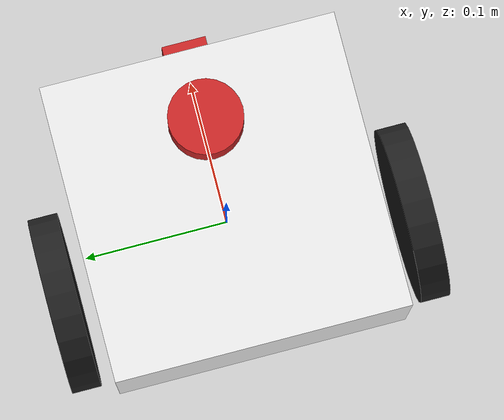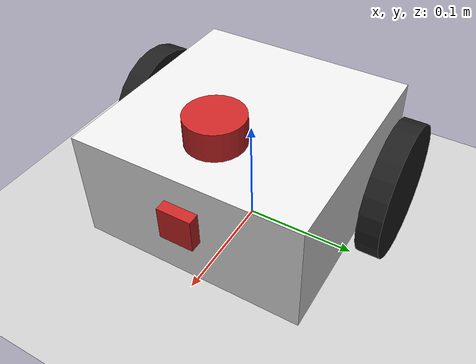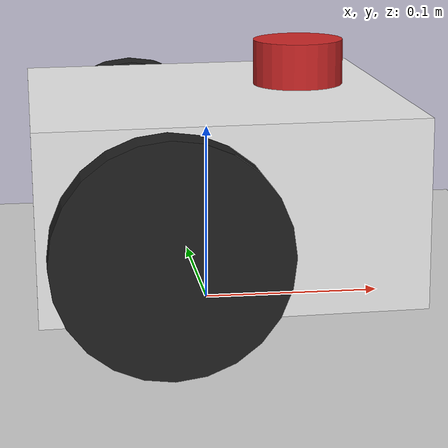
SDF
<sdf version="1.7">
 <world name="default">
  <light name="sun" type="directional">
   <pose>0 0 10 0 -0 0</pose>
   <diffuse>0.8 0.8 0.8 1</diffuse>
   <specular>0.2 0.2 0.2 1</specular>
   <attenuation>
    <range>1000</range>
    <constant>0.9</constant>
    <linear>0.01</linear>
    <quadratic>0.001</quadratic>
   </attenuation>
   <direction>-0.5 0.1 -0.9</direction>
   <spot><inner_angle>0</inner_angle><outer_angle>0</outer_angle><falloff>0</falloff></spot>
  </light>
  <model name="ground_plane">
   <static>1</static>
   <link name="link">
    <collision name="collision">
     <geometry><plane><normal>0 0 1</normal><size>100 100</size></plane></geometry>
     <surface>
      <contact><collide_bitmask>65535</collide_bitmask></contact>
      <friction><ode><mu>100</mu><mu2>50</mu2></ode></friction>
     </surface>
    </collision>
    <visual name="visual">
     <cast_shadows>0</cast_shadows>
     <geometry><plane><normal>0 0 1</normal><size>100 100</size></plane></geometry>
     <material>
      <script><uri>file://media/materials/scripts/gazebo.material</uri><name>Gazebo/Grey</name></script>
     </material>
    </visual>
   </link>
  </model>
  <gravity>0 0 -9.8</gravity>
  <magnetic_field>6e-06 2.3e-05 -4.2e-05</magnetic_field>
  <atmosphere type="adiabatic"/>
  <physics type="ode">
   <max_step_size>0.001</max_step_size>
   <real_time_factor>1</real_time_factor>
   <real_time_update_rate>1000</real_time_update_rate>
  </physics>
  <scene><ambient>0.4 0.4 0.4 1</ambient><background>0.7 0.7 0.7 1</background><shadows>1</shadows></scene>
  <audio><device>default</device></audio>
  <spherical_coordinates>
   <surface_model>EARTH_WGS84</surface_model>
   <latitude_deg>0</latitude_deg>
   <longitude_deg>0</longitude_deg>
   <elevation>0</elevation>
   <heading_deg>0</heading_deg>
  </spherical_coordinates>
  <model name="my_bot">
   <link name="base_link">
    <inertial>
     <pose>0.015714 0 0.052143 0 -0 0</pose>
     <mass>0.7</mass>
     <inertia>
      <ixx>0.00279109</ixx>
      <ixy>0</ixy>
      <ixz>-1.42857e-06</ixz>
      <iyy>0.00322824</iyy>
      <iyz>0</iyz>
      <izz>0.00381937</izz>
     </inertia>
    </inertial>
    <collision name="base_link_fixed_joint_lump__chassis_collision">
     <pose>0 0 0.05 0 -0 0</pose>
     <geometry><box><size>0.2 0.2 0.1</size></box></geometry>
    </collision>
    <collision name="base_link_fixed_joint_lump__caster_wheel_collision_1">
     <pose>0.06 0 0 0 -0 0</pose>
     <geometry><sphere><radius>0.021</radius></sphere></geometry>
     <surface><friction><ode><mu>0.001</mu><mu2>0.001</mu2></ode></friction></surface>
    </collision>
    <collision name="base_link_fixed_joint_lump__laser_frame_collision_2">
     <pose>0.05 0 0.115 0 -0 0</pose>
     <geometry><cylinder><length>0.025</length><radius>0.025</radius></cylinder></geometry>
    </collision>
    <visual name="base_link_fixed_joint_lump__chassis_visual">
     <pose>0 0 0.05 0 -0 0</pose>
     <geometry><box><size>0.2 0.2 0.1</size></box></geometry>
     <material>
      <script><name>Gazebo/White</name><uri>file://media/materials/scripts/gazebo.material</uri></script>
     </material>
    </visual>
    <visual name="base_link_fixed_joint_lump__camera_link_visual_1">
     <pose>0.105 0 0.06 0 -0 0</pose>
     <geometry><box><size>0.01 0.03 0.03</size></box></geometry>
     <material>
      <script><name>Gazebo/Red</name><uri>file://media/materials/scripts/gazebo.material</uri></script>
     </material>
    </visual>
    <visual name="base_link_fixed_joint_lump__caster_wheel_visual_2">
     <pose>0.06 0 0 0 -0 0</pose>
     <geometry><sphere><radius>0.021</radius></sphere></geometry>
     <material>
      <script><name>Gazebo/Black</name><uri>file://media/materials/scripts/gazebo.material</uri></script>
     </material>
    </visual>
    <visual name="base_link_fixed_joint_lump__laser_frame_visual_3">
     <pose>0.05 0 0.115 0 -0 0</pose>
     <geometry><cylinder><length>0.025</length><radius>0.025</radius></cylinder></geometry>
     <material>
      <script><name>Gazebo/Red</name><uri>file://media/materials/scripts/gazebo.material</uri></script>
     </material>
    </visual>
    <sensor name="camera" type="camera">
     <visualize>1</visualize>
     <update_rate>10</update_rate>
     <camera>
      <horizontal_fov>1.089</horizontal_fov>
      <image><format>R8G8B8</format><width>640</width><height>480</height></image>
      <clip><near>0.05</near><far>8</far></clip>
     </camera>
     <plugin name="camera_controller" filename="libgazebo_ros_camera.so">
      <frame_name>camera_link_optical</frame_name>
     </plugin>
     <pose>0.105 0 0.06 0 -0 0</pose>
    </sensor>
    <sensor name="laser" type="ray">
     <visualize>1</visualize>
     <update_rate>10</update_rate>
     <ray>
      <scan>
       <horizontal>
        <samples>360</samples>
        <min_angle>-3.14</min_angle>
        <max_angle>3.14</max_angle>
        <resolution>1</resolution>
       </horizontal>
       <vertical><samples>1</samples><min_angle>0</min_angle><max_angle>0</max_angle></vertical>
      </scan>
      <range><min>0.3</min><max>12</max></range>
     </ray>
     <plugin name="laser_controller" filename="libgazebo_ros_ray_sensor.so">
      <ros><argument>~/out:=scan</argument></ros>
      <output_type>sensor_msgs/LaserScan</output_type>
      <frame_name>laser_frame</frame_name>
     </plugin>
     <pose>0.05 0 0.115 0 -0 0</pose>
    </sensor>
   </link>
   <joint name="left_wheel_joint" type="revolute">
    <pose relative_to="base_link">-0.035 0.12 0.04 -1.5708 0 0</pose>
    <parent>base_link</parent>
    <child>left_wheel</child>
    <axis>
     <xyz>0 0 1</xyz>
     <limit><lower>-1e+16</lower><upper>1e+16</upper></limit>
     <dynamics><spring_reference>0</spring_reference><spring_stiffness>0</spring_stiffness></dynamics>
    </axis>
   </joint>
   <link name="left_wheel">
    <pose relative_to="left_wheel_joint">0 0 0 0 -0 0</pose>
    <inertial>
     <mass>0.1</mass>
     <inertia>
      <ixx>9.33333e-05</ixx>
      <ixy>0</ixy>
      <ixz>0</ixz>
      <iyy>9.33333e-05</iyy>
      <iyz>0</iyz>
      <izz>0.00018</izz>
     </inertia>
    </inertial>
    <collision name="left_wheel_collision">
     <geometry><cylinder><length>0.02</length><radius>0.06</radius></cylinder></geometry>
    </collision>
    <visual name="left_wheel_visual">
     <geometry><cylinder><length>0.02</length><radius>0.06</radius></cylinder></geometry>
     <material>
      <script><name>Gazebo/Black</name><uri>file://media/materials/scripts/gazebo.material</uri></script>
     </material>
    </visual>
   </link>
   <joint name="right_wheel_joint" type="revolute">
    <pose relative_to="base_link">-0.035 -0.12 0.04 -1.5708 0 0</pose>
    <parent>base_link</parent>
    <child>right_wheel</child>
    <axis>
     <xyz>0 0 1</xyz>
     <limit><lower>-1e+16</lower><upper>1e+16</upper></limit>
     <dynamics><spring_reference>0</spring_reference><spring_stiffness>0</spring_stiffness></dynamics>
    </axis>
   </joint>
   <link name="right_wheel">
    <pose relative_to="right_wheel_joint">0 0 0 0 -0 0</pose>
    <inertial>
     <mass>0.1</mass>
     <inertia>
      <ixx>9.33333e-05</ixx>
      <ixy>0</ixy>
      <ixz>0</ixz>
      <iyy>9.33333e-05</iyy>
      <iyz>0</iyz>
      <izz>0.00018</izz>
     </inertia>
    </inertial>
    <collision name="right_wheel_collision">
     <geometry><cylinder><length>0.02</length><radius>0.06</radius></cylinder></geometry>
    </collision>
    <visual name="right_wheel_visual">
     <geometry><cylinder><length>0.02</length><radius>0.06</radius></cylinder></geometry>
     <material>
      <script><name>Gazebo/Black</name><uri>file://media/materials/scripts/gazebo.material</uri></script>
     </material>
    </visual>
   </link>
   <plugin name="diff_drive" filename="libgazebo_ros_diff_drive.so">
    <left_joint>left_wheel_joint</left_joint>
    <right_joint>right_wheel_joint</right_joint>
    <wheel_separation>0.24</wheel_separation>
    <wheel_diameter>0.12</wheel_diameter>
    <max_wheel_torque>200</max_wheel_torque>
    <max_wheel_acceleration>10.0</max_wheel_acceleration>
    <odometry_frame>odom</odometry_frame>
    <robot_base_frame>base_link</robot_base_frame>
    <publish_odom>1</publish_odom>
    <publish_odom_tf>1</publish_odom_tf>
    <publish_wheel_tf>1</publish_wheel_tf>
   </plugin>
   <static>0</static>
   <plugin name="gazebo_ros2_control" filename="libgazebo_ros2_control.so">
    <parameters>/home/arun/arun_ws/install/bot_description/share/bot_description/config/my_controllers.yaml</parameters>
   </plugin>
   <pose>0.002846 0.000154 0.020369 0 -0.01048 0.002427</pose>
  </model>
 </world>
</sdf>
